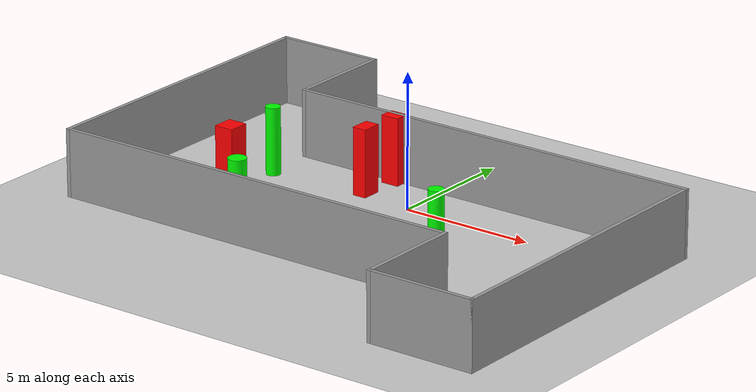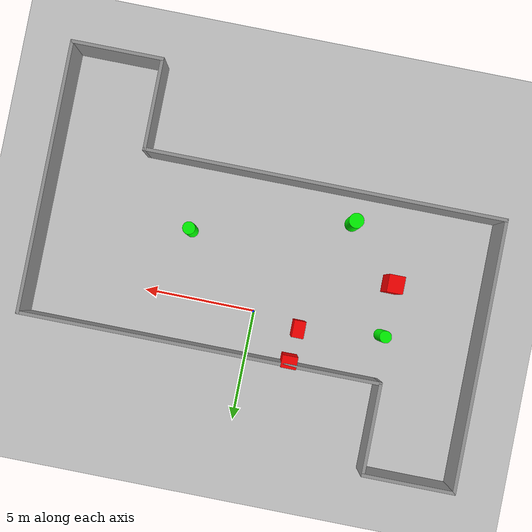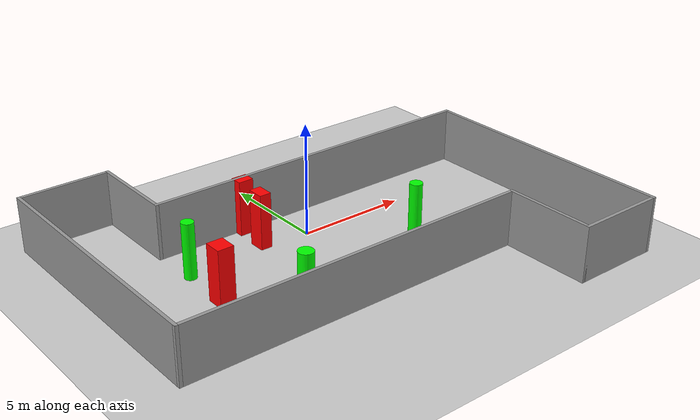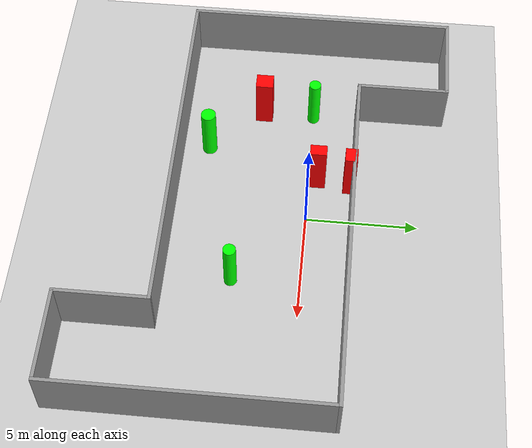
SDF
<sdf version="1.7">
 <world name="default">
  <light name="sun" type="directional">
   <pose>0 0 10 0 -0 0</pose>
   <diffuse>0.8 0.8 0.8 1</diffuse>
   <specular>0.2 0.2 0.2 1</specular>
   <attenuation>
    <range>1000</range>
    <constant>0.9</constant>
    <linear>0.01</linear>
    <quadratic>0.001</quadratic>
   </attenuation>
   <direction>-0.5 0.1 -0.9</direction>
   <spot><inner_angle>0</inner_angle><outer_angle>0</outer_angle><falloff>0</falloff></spot>
  </light>
  <model name="ground_plane">
   <static>1</static>
   <link name="link">
    <collision name="collision">
     <geometry><plane><normal>0 0 1</normal><size>100 100</size></plane></geometry>
     <surface>
      <contact><collide_bitmask>65535</collide_bitmask></contact>
      <friction><ode><mu>100</mu><mu2>50</mu2></ode></friction>
     </surface>
    </collision>
    <visual name="visual">
     <cast_shadows>0</cast_shadows>
     <geometry><plane><normal>0 0 1</normal><size>100 100</size></plane></geometry>
     <material>
      <script><uri>file://media/materials/scripts/gazebo.material</uri><name>Gazebo/Grey</name></script>
     </material>
    </visual>
   </link>
  </model>
  <gravity>0 0 -9.8</gravity>
  <magnetic_field>6e-06 2.3e-05 -4.2e-05</magnetic_field>
  <atmosphere type="adiabatic"/>
  <physics type="ode">
   <max_step_size>0.001</max_step_size>
   <real_time_factor>1</real_time_factor>
   <real_time_update_rate>1000</real_time_update_rate>
  </physics>
  <scene><ambient>0.4 0.4 0.4 1</ambient><background>0.7 0.7 0.7 1</background><shadows>1</shadows></scene>
  <spherical_coordinates>
   <surface_model>EARTH_WGS84</surface_model>
   <latitude_deg>0</latitude_deg>
   <longitude_deg>0</longitude_deg>
   <elevation>0</elevation>
   <heading_deg>0</heading_deg>
  </spherical_coordinates>
  <model name="my_base_walls">
   <link name="Wall_13">
    <collision name="Wall_13_Collision">
     <geometry><box><size>12.15 0.15 2.5</size></box></geometry>
     <pose>0 0 1.25 0 -0 0</pose>
    </collision>
    <visual name="Wall_13_Visual">
     <pose>0 0 1.25 0 -0 0</pose>
     <geometry><box><size>12.15 0.15 2.5</size></box></geometry>
     <material>
      <script><uri>file://media/materials/scripts/gazebo.material</uri><name>Gazebo/Grey</name></script>
      <ambient>1 1 1 1</ambient>
     </material>
     <meta><layer>0</layer></meta>
    </visual>
    <pose>10 -2 0 0 -0 1.5708</pose>
   </link>
   <link name="Wall_15">
    <collision name="Wall_15_Collision">
     <geometry><box><size>16.15 0.15 2.5</size></box></geometry>
     <pose>0 0 1.25 0 -0 0</pose>
    </collision>
    <visual name="Wall_15_Visual">
     <pose>0 0 1.25 0 -0 0</pose>
     <geometry><box><size>16.15 0.15 2.5</size></box></geometry>
     <material>
      <script><uri>file://media/materials/scripts/gazebo.material</uri><name>Gazebo/Grey</name></script>
      <ambient>1 1 1 1</ambient>
     </material>
     <meta><layer>0</layer></meta>
    </visual>
    <pose>2 4 0 0 -0 3.14159</pose>
   </link>
   <link name="Wall_17">
    <collision name="Wall_17_Collision">
     <geometry><box><size>4.15 0.15 2.5</size></box></geometry>
     <pose>0 0 1.25 0 -0 0</pose>
    </collision>
    <visual name="Wall_17_Visual">
     <pose>0 0 1.25 0 -0 0</pose>
     <geometry><box><size>4.15 0.15 2.5</size></box></geometry>
     <material>
      <script><uri>file://media/materials/scripts/gazebo.material</uri><name>Gazebo/Grey</name></script>
      <ambient>1 1 1 1</ambient>
     </material>
     <meta><layer>0</layer></meta>
    </visual>
    <pose>6 -6 0 0 -0 -1.5708</pose>
   </link>
   <link name="Wall_19">
    <collision name="Wall_19_Collision">
     <geometry><box><size>12.15 0.15 2.5</size></box></geometry>
     <pose>0 0 1.25 0 -0 0</pose>
    </collision>
    <visual name="Wall_19_Visual">
     <pose>0 0 1.25 0 -0 0</pose>
     <geometry><box><size>12.15 0.15 2.5</size></box></geometry>
     <material>
      <script><uri>file://media/materials/scripts/gazebo.material</uri><name>Gazebo/Grey</name></script>
      <ambient>1 1 1 1</ambient>
     </material>
     <meta><layer>0</layer></meta>
    </visual>
    <pose>-10 2 0 0 -0 1.5708</pose>
   </link>
   <link name="Wall_21">
    <collision name="Wall_21_Collision">
     <geometry><box><size>4.15 0.15 2.5</size></box></geometry>
     <pose>0 0 1.25 0 -0 0</pose>
    </collision>
    <visual name="Wall_21_Visual">
     <pose>0 0 1.25 0 -0 0</pose>
     <geometry><box><size>4.15 0.15 2.5</size></box></geometry>
     <material>
      <script><uri>file://media/materials/scripts/gazebo.material</uri><name>Gazebo/Grey</name></script>
      <ambient>1 1 1 1</ambient>
     </material>
     <meta><layer>0</layer></meta>
    </visual>
    <pose>-8 8 0 0 -0 0</pose>
   </link>
   <link name="Wall_23">
    <collision name="Wall_23_Collision">
     <geometry><box><size>4.15 0.15 2.5</size></box></geometry>
     <pose>0 0 1.25 0 -0 0</pose>
    </collision>
    <visual name="Wall_23_Visual">
     <pose>0 0 1.25 0 -0 0</pose>
     <geometry><box><size>4.15 0.15 2.5</size></box></geometry>
     <material>
      <script><uri>file://media/materials/scripts/gazebo.material</uri><name>Gazebo/Grey</name></script>
      <ambient>1 1 1 1</ambient>
     </material>
     <meta><layer>0</layer></meta>
    </visual>
    <pose>-6 6 0 0 -0 -1.5708</pose>
   </link>
   <link name="Wall_25">
    <collision name="Wall_25_Collision">
     <geometry><box><size>4.15 0.15 2.5</size></box></geometry>
     <pose>0 0 1.25 0 -0 0</pose>
    </collision>
    <visual name="Wall_25_Visual">
     <pose>0 0 1.25 0 -0 0</pose>
     <geometry><box><size>4.15 0.15 2.5</size></box></geometry>
     <material>
      <script><uri>file://media/materials/scripts/gazebo.material</uri><name>Gazebo/Grey</name></script>
      <ambient>1 1 1 1</ambient>
     </material>
     <meta><layer>0</layer></meta>
    </visual>
    <pose>8 -8 0 0 -0 0</pose>
   </link>
   <link name="Wall_9">
    <collision name="Wall_9_Collision">
     <geometry><box><size>16.15 0.15 2.5</size></box></geometry>
     <pose>0 0 1.25 0 -0 0</pose>
    </collision>
    <visual name="Wall_9_Visual">
     <pose>0 0 1.25 0 -0 0</pose>
     <geometry><box><size>16.15 0.15 2.5</size></box></geometry>
     <material>
      <script><uri>file://media/materials/scripts/gazebo.material</uri><name>Gazebo/Grey</name></script>
      <ambient>1 1 1 1</ambient>
     </material>
     <meta><layer>0</layer></meta>
    </visual>
    <pose>-2 -4 0 0 -0 3.14159</pose>
   </link>
   <static>1</static>
   <pose>-0 -2 0 0 -0 0</pose>
  </model>
  <model name="cylinder1">
   <static>1</static>
   <link name="link">
    <inertial>
     <mass>1</mass>
     <inertia><ixx>0.5</ixx><ixy>0</ixy><ixz>0</ixz><iyy>0.5</iyy><iyz>0</iyz><izz>1</izz></inertia>
    </inertial>
    <collision name="collision">
     <geometry><cylinder><radius>0.28152259782401556</radius><length>2.5</length></cylinder></geometry>
    </collision>
    <visual name="visual">
     <geometry><cylinder><radius>0.28152259782401556</radius><length>2.5</length></cylinder></geometry>
     <material>
      <ambient>0 1 0 1</ambient>
      <diffuse>0 1 0 1</diffuse>
      <specular>0.1 0.1 0.1 1</specular>
      <emissive>0 0 0 0</emissive>
     </material>
    </visual>
   </link>
   <pose>3.436350446508822 -3.008828220963336 1.25 0 0 0</pose>
  </model>
  <model name="cylinder2">
   <static>1</static>
   <link name="link">
    <inertial>
     <mass>1</mass>
     <inertia><ixx>0.5</ixx><ixy>0</ixy><ixz>0</ixz><iyy>0.5</iyy><iyz>0</iyz><izz>1</izz></inertia>
    </inertial>
    <collision name="collision">
     <geometry><cylinder><radius>0.26925857084063687</radius><length>2.5</length></cylinder></geometry>
    </collision>
    <visual name="visual">
     <geometry><cylinder><radius>0.26925857084063687</radius><length>2.5</length></cylinder></geometry>
     <material>
      <ambient>0 1 0 1</ambient>
      <diffuse>0 1 0 1</diffuse>
      <specular>0.1 0.1 0.1 1</specular>
      <emissive>0 0 0 0</emissive>
     </material>
    </visual>
   </link>
   <pose>-5.821996531152287 -0.028457532235326433 1.25 0 0 0</pose>
  </model>
  <model name="cylinder3">
   <static>1</static>
   <link name="link">
    <inertial>
     <mass>1</mass>
     <inertia><ixx>0.5</ixx><ixy>0</ixy><ixz>0</ixz><iyy>0.5</iyy><iyz>0</iyz><izz>1</izz></inertia>
    </inertial>
    <collision name="collision">
     <geometry><cylinder><radius>0.33429754056733785</radius><length>2.5</length></cylinder></geometry>
    </collision>
    <visual name="visual">
     <geometry><cylinder><radius>0.33429754056733785</radius><length>2.5</length></cylinder></geometry>
     <material>
      <ambient>0 1 0 1</ambient>
      <diffuse>0 1 0 1</diffuse>
      <specular>0.1 0.1 0.1 1</specular>
      <emissive>0 0 0 0</emissive>
     </material>
    </visual>
   </link>
   <pose>-3.631998616463489 -4.722707940321539 1.25 0 0 0</pose>
  </model>
  <model name="box1">
   <static>1</static>
   <link name="link">
    <inertial>
     <mass>1</mass>
     <inertia><ixx>0.083</ixx><ixy>0</ixy><ixz>0</ixz><iyy>0.083</iyy><iyz>0</iyz><izz>0.083</izz></inertia>
    </inertial>
    <collision name="collision">
     <geometry><box><size>0.5290295281373536 0.7508269985870779 2.5</size></box></geometry>
    </collision>
    <visual name="visual">
     <geometry><box><size>0.5290295281373536 0.7508269985870779 2.5</size></box></geometry>
     <material>
      <ambient>1 0 0 1</ambient>
      <diffuse>1 0 0 1</diffuse>
      <specular>0.1 0.1 0.1 1</specular>
      <emissive>0 0 0 0</emissive>
     </material>
    </visual>
    <sensor name="my_contact" type="contact">
     <contact><collision>box_collision</collision><topic>__default_topic__</topic></contact>
    </sensor>
   </link>
   <pose>-2.0859935495877484 0.37853202771240824 1.25 0 0 0</pose>
  </model>
  <model name="box2">
   <static>1</static>
   <link name="link">
    <inertial>
     <mass>1</mass>
     <inertia><ixx>0.083</ixx><ixy>0</ixy><ixz>0</ixz><iyy>0.083</iyy><iyz>0</iyz><izz>0.083</izz></inertia>
    </inertial>
    <collision name="collision">
     <geometry><box><size>0.6904801509839149 0.5542048625834712 2.5</size></box></geometry>
    </collision>
    <visual name="visual">
     <geometry><box><size>0.6904801509839149 0.5542048625834712 2.5</size></box></geometry>
     <material>
      <ambient>1 0 0 1</ambient>
      <diffuse>1 0 0 1</diffuse>
      <specular>0.1 0.1 0.1 1</specular>
      <emissive>0 0 0 0</emissive>
     </material>
    </visual>
    <sensor name="my_contact" type="contact">
     <contact><collision>box_collision</collision><topic>__default_topic__</topic></contact>
    </sensor>
   </link>
   <pose>-1.9548213820919251 1.8484642905118518 1.25 0 0 0</pose>
  </model>
  <model name="box3">
   <static>1</static>
   <link name="link">
    <inertial>
     <mass>1</mass>
     <inertia><ixx>0.083</ixx><ixy>0</ixy><ixz>0</ixz><iyy>0.083</iyy><iyz>0</iyz><izz>0.083</izz></inertia>
    </inertial>
    <collision name="collision">
     <geometry><box><size>0.7213114001896768 0.7838550173218481 2.5</size></box></geometry>
    </collision>
    <visual name="visual">
     <geometry><box><size>0.7213114001896768 0.7838550173218481 2.5</size></box></geometry>
     <material>
      <ambient>1 0 0 1</ambient>
      <diffuse>1 0 0 1</diffuse>
      <specular>0.1 0.1 0.1 1</specular>
      <emissive>0 0 0 0</emissive>
     </material>
    </visual>
    <sensor name="my_contact" type="contact">
     <contact><collision>box_collision</collision><topic>__default_topic__</topic></contact>
    </sensor>
   </link>
   <pose>-5.838431752824903 -2.351830563931256 1.25 0 0 0</pose>
  </model>
 </world>
</sdf>
